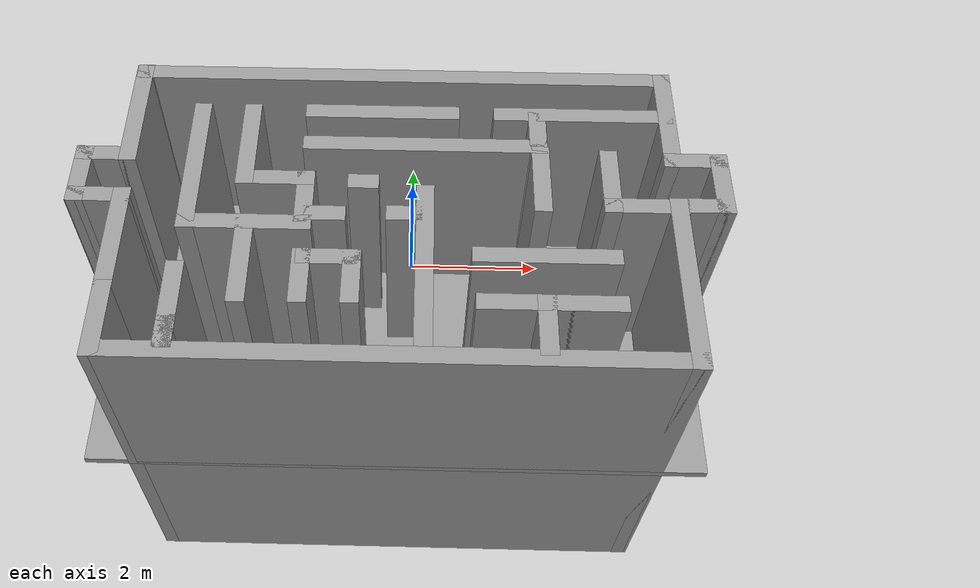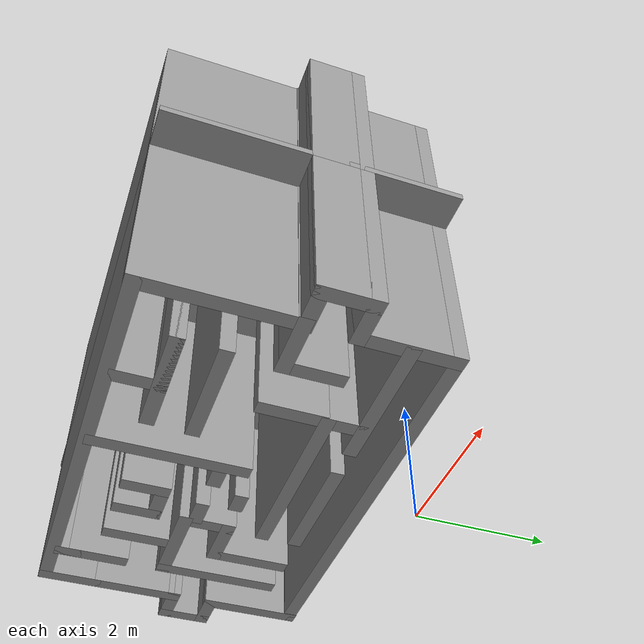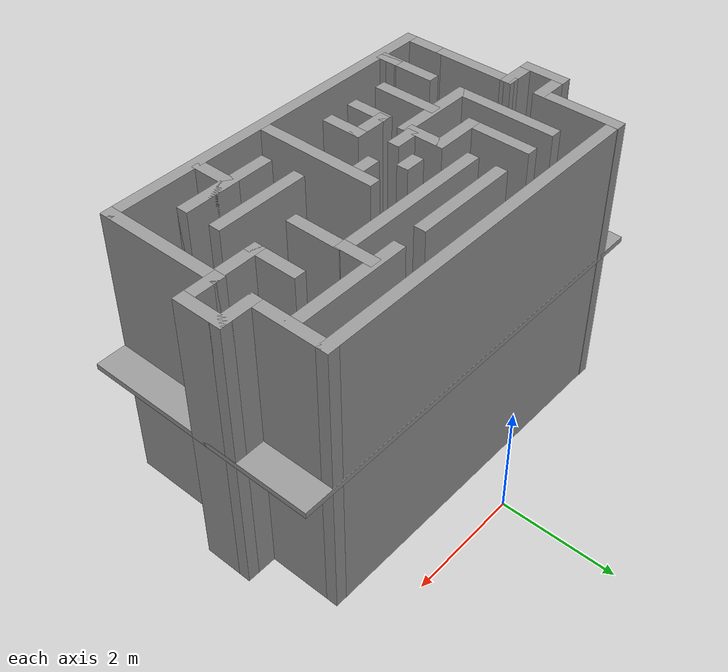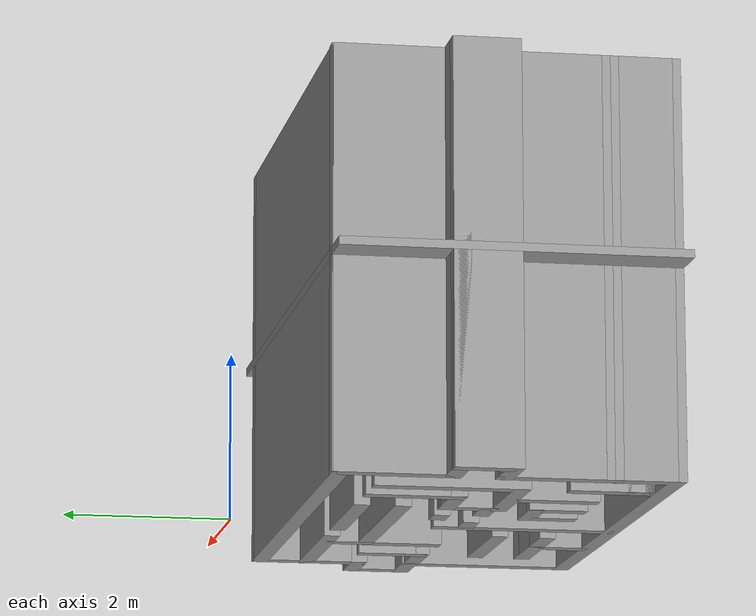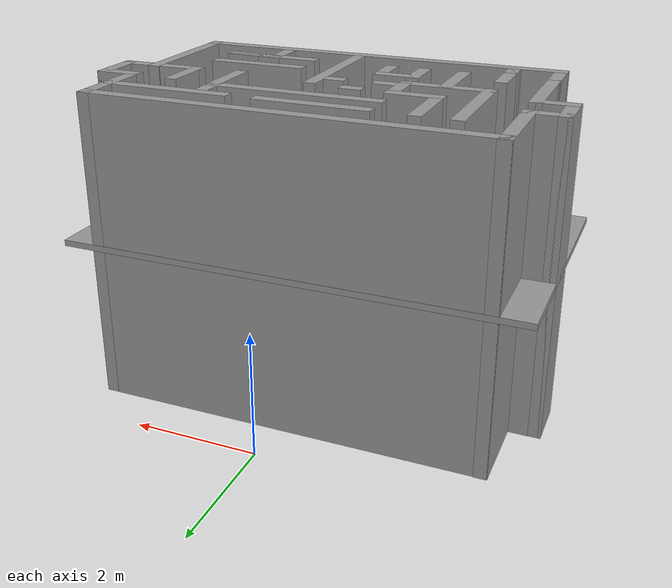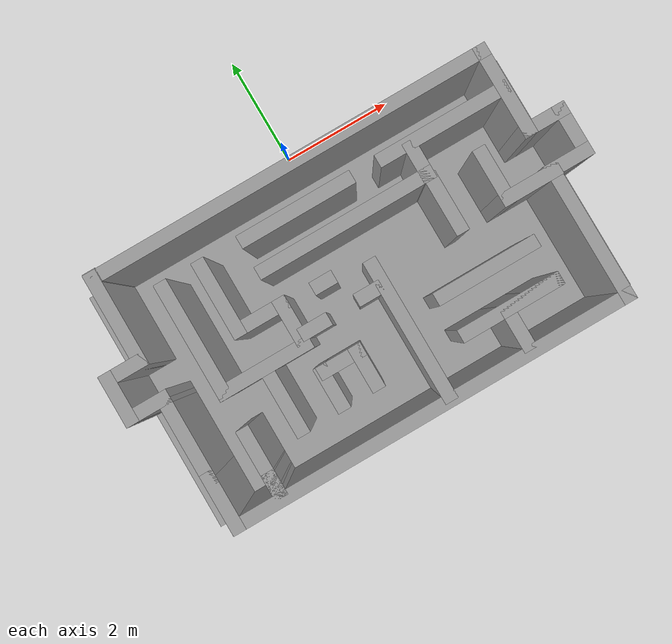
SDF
<?xml version='1.0'?>
<sdf version='1.4'>
  <model name='Maze'>
    <link name='Floor_0'>
      <collision name='Floor_0_Collision'>
        <geometry>
          <box>
            <size>7.4 4.1 0.1</size>
          </box>
        </geometry>
        <pose>0 0 0.05 0 -0 0</pose>
      </collision>
      <visual name='Floor_0_Visual'>
        <pose>0 0 0.05 0 -0 0</pose>
        <geometry>
          <box>
            <size>7.4 4.1 0.1</size>
          </box>
        </geometry>
        <material>
          <script>
            <uri>file://media/materials/scripts/gazebo.material</uri>
            <name>Gazebo/Grey</name>
          </script>
        </material>
      </visual>
      <velocity_decay>
        <linear>0</linear>
        <angular>0</angular>
      </velocity_decay>
      <pose>-0.13 -2.74 2.5 0 -0 0</pose>
    </link>
    <link name='Wall_0'>
      <collision name='Wall_0_Collision'>
        <geometry>
          <box>
            <size>0.8 0.2 2.5</size>
          </box>
        </geometry>
        <pose>0 0 1.25 0 -0 0</pose>
      </collision>
      <visual name='Wall_0_Visual'>
        <pose>0 0 1.25 0 -0 0</pose>
        <geometry>
          <box>
            <size>0.8 0.2 2.5</size>
          </box>
        </geometry>
        <material>
          <script>
            <uri>file://media/materials/scripts/gazebo.material</uri>
            <name>Gazebo/Grey</name>
          </script>
        </material>
      </visual>
      <velocity_decay>
        <linear>0</linear>
        <angular>0</angular>
      </velocity_decay>
      <pose>-3.73 -2.4 0 0 -0 1.5708</pose>
    </link>
    <link name='Wall_1'>
      <collision name='Wall_1_Collision'>
        <geometry>
          <box>
            <size>0.7 0.2 2.5</size>
          </box>
        </geometry>
        <pose>0 0 1.25 0 -0 0</pose>
      </collision>
      <visual name='Wall_1_Visual'>
        <pose>0 0 1.25 0 -0 0</pose>
        <geometry>
          <box>
            <size>0.7 0.2 2.5</size>
          </box>
        </geometry>
        <material>
          <script>
            <uri>file://media/materials/scripts/gazebo.material</uri>
            <name>Gazebo/Grey</name>
          </script>
        </material>
      </visual>
      <velocity_decay>
        <linear>0</linear>
        <angular>0</angular>
      </velocity_decay>
      <pose>-3.48 -2.1 0 0 -0 0</pose>
    </link>
    <link name='Wall_10'>
      <collision name='Wall_10_Collision'>
        <geometry>
          <box>
            <size>0.85 0.2 2.5</size>
          </box>
        </geometry>
        <pose>0 0 1.25 0 -0 0</pose>
      </collision>
      <visual name='Wall_10_Visual'>
        <pose>0 0 1.25 0 -0 0</pose>
        <geometry>
          <box>
            <size>0.85 0.2 2.5</size>
          </box>
        </geometry>
        <material>
          <script>
            <uri>file://media/materials/scripts/gazebo.material</uri>
            <name>Gazebo/Grey</name>
          </script>
        </material>
      </visual>
      <velocity_decay>
        <linear>0</linear>
        <angular>0</angular>
      </velocity_decay>
      <pose>3.47 -2.375 0 0 -0 1.5708</pose>
    </link>
    <link name='Wall_100'>
      <collision name='Wall_100_Collision'>
        <geometry>
          <box>
            <size>0.96 0.2 2.5</size>
          </box>
        </geometry>
        <pose>0 0 1.25 0 -0 0</pose>
      </collision>
      <visual name='Wall_100_Visual'>
        <pose>0 0 1.25 0 -0 0</pose>
        <geometry>
          <box>
            <size>0.96 0.2 2.5</size>
          </box>
        </geometry>
        <material>
          <script>
            <uri>file://media/materials/scripts/gazebo.material</uri>
            <name>Gazebo/Grey</name>
          </script>
        </material>
      </visual>
      <velocity_decay>
        <linear>0</linear>
        <angular>0</angular>
      </velocity_decay>
      <pose>1.81785 -4.02357 2.5 0 -0 3.14159</pose>
    </link>
    <link name='Wall_101'>
      <collision name='Wall_101_Collision'>
        <geometry>
          <box>
            <size>0.74 0.2 2.5</size>
          </box>
        </geometry>
        <pose>0 0 1.25 0 -0 0</pose>
      </collision>
      <visual name='Wall_101_Visual'>
        <pose>0 0 1.25 0 -0 0</pose>
        <geometry>
          <box>
            <size>0.74 0.2 2.5</size>
          </box>
        </geometry>
        <material>
          <script>
            <uri>file://media/materials/scripts/gazebo.material</uri>
            <name>Gazebo/Grey</name>
          </script>
        </material>
      </visual>
      <velocity_decay>
        <linear>0</linear>
        <angular>0</angular>
      </velocity_decay>
      <pose>1.43785 -4.29357 2.5 0 0 -1.5708</pose>
    </link>
    <link name='Wall_102'>
      <collision name='Wall_102_Collision'>
        <geometry>
          <box>
            <size>0.35 0.2 2.5</size>
          </box>
        </geometry>
        <pose>0 0 1.25 0 -0 0</pose>
      </collision>
      <visual name='Wall_102_Visual'>
        <pose>0 0 1.25 0 -0 0</pose>
        <geometry>
          <box>
            <size>0.35 0.2 2.5</size>
          </box>
        </geometry>
        <material>
          <script>
            <uri>file://media/materials/scripts/gazebo.material</uri>
            <name>Gazebo/Grey</name>
          </script>
        </material>
      </visual>
      <velocity_decay>
        <linear>0</linear>
        <angular>0</angular>
      </velocity_decay>
      <pose>-0.53715 -2.44357 2.5 0 -0 0</pose>
    </link>
    <link name='Wall_103'>
      <collision name='Wall_103_Collision'>
        <geometry>
          <box>
            <size>0.4 0.2 2.5</size>
          </box>
        </geometry>
        <pose>0 0 1.25 0 -0 0</pose>
      </collision>
      <visual name='Wall_103_Visual'>
        <pose>0 0 1.25 0 -0 0</pose>
        <geometry>
          <box>
            <size>0.4 0.2 2.5</size>
          </box>
        </geometry>
        <material>
          <script>
            <uri>file://media/materials/scripts/gazebo.material</uri>
            <name>Gazebo/Grey</name>
          </script>
        </material>
      </visual>
      <velocity_decay>
        <linear>0</linear>
        <angular>0</angular>
      </velocity_decay>
      <pose>-0.07215 -2.88357 2.5 0 -0 3.14159</pose>
    </link>
    <link name='Wall_104'>
      <collision name='Wall_104_Collision'>
        <geometry>
          <box>
            <size>0.46 0.2 2.5</size>
          </box>
        </geometry>
        <pose>0 0 1.25 0 -0 0</pose>
      </collision>
      <visual name='Wall_104_Visual'>
        <pose>0 0 1.25 0 -0 0</pose>
        <geometry>
          <box>
            <size>0.46 0.2 2.5</size>
          </box>
        </geometry>
        <material>
          <script>
            <uri>file://media/materials/scripts/gazebo.material</uri>
            <name>Gazebo/Grey</name>
          </script>
        </material>
      </visual>
      <velocity_decay>
        <linear>0</linear>
        <angular>0</angular>
      </velocity_decay>
      <pose>-0.94215 -2.90357 2.5 0 -0 0</pose>
    </link>
    <link name='Wall_11'>
      <collision name='Wall_11_Collision'>
        <geometry>
          <box>
            <size>0.72 0.2 2.5</size>
          </box>
        </geometry>
        <pose>0 0 1.25 0 -0 0</pose>
      </collision>
      <visual name='Wall_11_Visual'>
        <pose>0 0 1.25 0 -0 0</pose>
        <geometry>
          <box>
            <size>0.72 0.2 2.5</size>
          </box>
        </geometry>
        <material>
          <script>
            <uri>file://media/materials/scripts/gazebo.material</uri>
            <name>Gazebo/Grey</name>
          </script>
        </material>
      </visual>
      <velocity_decay>
        <linear>0</linear>
        <angular>0</angular>
      </velocity_decay>
      <pose>3.21 -2.05 0 0 -0 3.14159</pose>
    </link>
    <link name='Wall_12'>
      <collision name='Wall_12_Collision'>
        <geometry>
          <box>
            <size>1.45 0.2 2.5</size>
          </box>
        </geometry>
        <pose>0 0 1.25 0 -0 0</pose>
      </collision>
      <visual name='Wall_12_Visual'>
        <pose>0 0 1.25 0 -0 0</pose>
        <geometry>
          <box>
            <size>1.45 0.2 2.5</size>
          </box>
        </geometry>
        <material>
          <script>
            <uri>file://media/materials/scripts/gazebo.material</uri>
            <name>Gazebo/Grey</name>
          </script>
        </material>
      </visual>
      <velocity_decay>
        <linear>0</linear>
        <angular>0</angular>
      </velocity_decay>
      <pose>2.95 -1.425 0 0 -0 1.5708</pose>
    </link>
    <link name='Wall_13'>
      <collision name='Wall_13_Collision'>
        <geometry>
          <box>
            <size>6.37 0.2 2.5</size>
          </box>
        </geometry>
        <pose>0 0 1.25 0 -0 0</pose>
      </collision>
      <visual name='Wall_13_Visual'>
        <pose>0 0 1.25 0 -0 0</pose>
        <geometry>
          <box>
            <size>6.37 0.2 2.5</size>
          </box>
        </geometry>
        <material>
          <script>
            <uri>file://media/materials/scripts/gazebo.material</uri>
            <name>Gazebo/Grey</name>
          </script>
        </material>
      </visual>
      <velocity_decay>
        <linear>0</linear>
        <angular>0</angular>
      </velocity_decay>
      <pose>-0.135 -0.8 0 0 -0 3.14159</pose>
    </link>
    <link name='Wall_14'>
      <collision name='Wall_14_Collision'>
        <geometry>
          <box>
            <size>0.21 0.2 2.5</size>
          </box>
        </geometry>
        <pose>0 0 1.25 0 -0 0</pose>
      </collision>
      <visual name='Wall_14_Visual'>
        <pose>0 0 1.25 0 -0 0</pose>
        <geometry>
          <box>
            <size>0.21 0.2 2.5</size>
          </box>
        </geometry>
        <material>
          <script>
            <uri>file://media/materials/scripts/gazebo.material</uri>
            <name>Gazebo/Grey</name>
          </script>
        </material>
      </visual>
      <velocity_decay>
        <linear>0</linear>
        <angular>0</angular>
      </velocity_decay>
      <pose>-3.22 -0.795 0 0 -0 1.5708</pose>
    </link>
    <link name='Wall_16'>
      <collision name='Wall_16_Collision'>
        <geometry>
          <box>
            <size>1.83515 0.2 2.5</size>
          </box>
        </geometry>
        <pose>0 0 1.25 0 -0 0</pose>
      </collision>
      <visual name='Wall_16_Visual'>
        <pose>0 0 1.25 0 -0 0</pose>
        <geometry>
          <box>
            <size>1.83515 0.2 2.5</size>
          </box>
        </geometry>
        <material>
          <script>
            <uri>file://media/materials/scripts/gazebo.material</uri>
            <name>Gazebo/Grey</name>
          </script>
        </material>
      </visual>
      <velocity_decay>
        <linear>0</linear>
        <angular>0</angular>
      </velocity_decay>
      <pose>-2.46 -2.22243 0 0 0 -1.5708</pose>
    </link>
    <link name='Wall_17'>
      <collision name='Wall_17_Collision'>
        <geometry>
          <box>
            <size>1.48 0.2 2.5</size>
          </box>
        </geometry>
        <pose>0 0 1.25 0 -0 0</pose>
      </collision>
      <visual name='Wall_17_Visual'>
        <pose>0 0 1.25 0 -0 0</pose>
        <geometry>
          <box>
            <size>1.48 0.2 2.5</size>
          </box>
        </geometry>
        <material>
          <script>
            <uri>file://media/materials/scripts/gazebo.material</uri>
            <name>Gazebo/Grey</name>
          </script>
        </material>
      </visual>
      <velocity_decay>
        <linear>0</linear>
        <angular>0</angular>
      </velocity_decay>
      <pose>-1.82 -3.04 0 0 -0 0</pose>
    </link>
    <link name='Wall_19'>
      <collision name='Wall_19_Collision'>
        <geometry>
          <box>
            <size>1.20515 0.2 2.5</size>
          </box>
        </geometry>
        <pose>0 0 1.25 0 -0 0</pose>
      </collision>
      <visual name='Wall_19_Visual'>
        <pose>0 0 1.25 0 -0 0</pose>
        <geometry>
          <box>
            <size>1.20515 0.2 2.5</size>
          </box>
        </geometry>
        <material>
          <script>
            <uri>file://media/materials/scripts/gazebo.material</uri>
            <name>Gazebo/Grey</name>
          </script>
        </material>
      </visual>
      <velocity_decay>
        <linear>0</linear>
        <angular>0</angular>
      </velocity_decay>
      <pose>-1.87157 -1.90742 0 0 0 -1.5708</pose>
    </link>
    <link name='Wall_2'>
      <collision name='Wall_2_Collision'>
        <geometry>
          <box>
            <size>1.5 0.2 2.5</size>
          </box>
        </geometry>
        <pose>0 0 1.25 0 -0 0</pose>
      </collision>
      <visual name='Wall_2_Visual'>
        <pose>0 0 1.25 0 -0 0</pose>
        <geometry>
          <box>
            <size>1.5 0.2 2.5</size>
          </box>
        </geometry>
        <material>
          <script>
            <uri>file://media/materials/scripts/gazebo.material</uri>
            <name>Gazebo/Grey</name>
          </script>
        </material>
      </visual>
      <velocity_decay>
        <linear>0</linear>
        <angular>0</angular>
      </velocity_decay>
      <pose>-3.23 -1.45 0 0 -0 1.5708</pose>
    </link>
    <link name='Wall_20'>
      <collision name='Wall_20_Collision'>
        <geometry>
          <box>
            <size>0.891574 0.2 2.5</size>
          </box>
        </geometry>
        <pose>0 0 1.25 0 -0 0</pose>
      </collision>
      <visual name='Wall_20_Visual'>
        <pose>0 0 1.25 0 -0 0</pose>
        <geometry>
          <box>
            <size>0.891574 0.2 2.5</size>
          </box>
        </geometry>
        <material>
          <script>
            <uri>file://media/materials/scripts/gazebo.material</uri>
            <name>Gazebo/Grey</name>
          </script>
        </material>
      </visual>
      <velocity_decay>
        <linear>0</linear>
        <angular>0</angular>
      </velocity_decay>
      <pose>-1.52579 -2.41 0 0 -0 0</pose>
    </link>
    <link name='Wall_21'>
      <collision name='Wall_21_Collision'>
        <geometry>
          <box>
            <size>0.72 0.2 2.5</size>
          </box>
        </geometry>
        <pose>0 0 1.25 0 -0 0</pose>
      </collision>
      <visual name='Wall_21_Visual'>
        <pose>0 0 1.25 0 -0 0</pose>
        <geometry>
          <box>
            <size>0.72 0.2 2.5</size>
          </box>
        </geometry>
        <material>
          <script>
            <uri>file://media/materials/scripts/gazebo.material</uri>
            <name>Gazebo/Grey</name>
          </script>
        </material>
      </visual>
      <velocity_decay>
        <linear>0</linear>
        <angular>0</angular>
      </velocity_decay>
      <pose>-1.18 -2.67 0 0 0 -1.5708</pose>
    </link>
    <link name='Wall_24'>
      <collision name='Wall_24_Collision'>
        <geometry>
          <box>
            <size>0.397255 0.2 2.5</size>
          </box>
        </geometry>
        <pose>0 0 1.25 0 -0 0</pose>
      </collision>
      <visual name='Wall_24_Visual'>
        <pose>0 0 1.25 0 -0 0</pose>
        <geometry>
          <box>
            <size>0.397255 0.2 2.5</size>
          </box>
        </geometry>
        <material>
          <script>
            <uri>file://media/materials/scripts/gazebo.material</uri>
            <name>Gazebo/Grey</name>
          </script>
        </material>
      </visual>
      <velocity_decay>
        <linear>0</linear>
        <angular>0</angular>
      </velocity_decay>
      <pose>-2.48879 -4.4693 0 0 0 -1.5708</pose>
    </link>
    <link name='Wall_25'>
      <collision name='Wall_25_Collision'>
        <geometry>
          <box>
            <size>0.397255 0.2 2.5</size>
          </box>
        </geometry>
        <pose>0 0 1.25 0 -0 0</pose>
      </collision>
      <visual name='Wall_25_Visual'>
        <pose>0 0 1.25 0 -0 0</pose>
        <geometry>
          <box>
            <size>0.397255 0.2 2.5</size>
          </box>
        </geometry>
        <material>
          <script>
            <uri>file://media/materials/scripts/gazebo.material</uri>
            <name>Gazebo/Grey</name>
          </script>
        </material>
      </visual>
      <velocity_decay>
        <linear>0</linear>
        <angular>0</angular>
      </velocity_decay>
      <pose>-2.48879 -4.4693 0 0 -0 1.5708</pose>
    </link>
    <link name='Wall_26'>
      <collision name='Wall_26_Collision'>
        <geometry>
          <box>
            <size>0.883817 0.2 2.5</size>
          </box>
        </geometry>
        <pose>0 0 1.25 0 -0 0</pose>
      </collision>
      <visual name='Wall_26_Visual'>
        <pose>0 0 1.25 0 -0 0</pose>
        <geometry>
          <box>
            <size>0.883817 0.2 2.5</size>
          </box>
        </geometry>
        <material>
          <script>
            <uri>file://media/materials/scripts/gazebo.material</uri>
            <name>Gazebo/Grey</name>
          </script>
        </material>
      </visual>
      <velocity_decay>
        <linear>0</linear>
        <angular>0</angular>
      </velocity_decay>
      <pose>-2.48879 -4.02876 0 0 -0 1.5708</pose>
    </link>
    <link name='Wall_28'>
      <collision name='Wall_28_Collision'>
        <geometry>
          <box>
            <size>1.1008 0.2 2.5</size>
          </box>
        </geometry>
        <pose>0 0 1.25 0 -0 0</pose>
      </collision>
      <visual name='Wall_28_Visual'>
        <pose>0 0 1.25 0 -0 0</pose>
        <geometry>
          <box>
            <size>1.1008 0.2 2.5</size>
          </box>
        </geometry>
        <material>
          <script>
            <uri>file://media/materials/scripts/gazebo.material</uri>
            <name>Gazebo/Grey</name>
          </script>
        </material>
      </visual>
      <velocity_decay>
        <linear>0</linear>
        <angular>0</angular>
      </velocity_decay>
      <pose>-1.80497 -3.54549 0 0 0 -1.5708</pose>
    </link>
    <link name='Wall_31'>
      <collision name='Wall_31_Collision'>
        <geometry>
          <box>
            <size>0.699712 0.2 2.5</size>
          </box>
        </geometry>
        <pose>0 0 1.25 0 -0 0</pose>
      </collision>
      <visual name='Wall_31_Visual'>
        <pose>0 0 1.25 0 -0 0</pose>
        <geometry>
          <box>
            <size>0.699712 0.2 2.5</size>
          </box>
        </geometry>
        <material>
          <script>
            <uri>file://media/materials/scripts/gazebo.material</uri>
            <name>Gazebo/Grey</name>
          </script>
        </material>
      </visual>
      <velocity_decay>
        <linear>0</linear>
        <angular>0</angular>
      </velocity_decay>
      <pose>-1.16061 -3.73945 0 0 0 -1.5708</pose>
    </link>
    <link name='Wall_33'>
      <collision name='Wall_33_Collision'>
        <geometry>
          <box>
            <size>0.706287 0.2 2.5</size>
          </box>
        </geometry>
        <pose>0 0 1.25 0 -0 0</pose>
      </collision>
      <visual name='Wall_33_Visual'>
        <pose>0 0 1.25 0 -0 0</pose>
        <geometry>
          <box>
            <size>0.706287 0.2 2.5</size>
          </box>
        </geometry>
        <material>
          <script>
            <uri>file://media/materials/scripts/gazebo.material</uri>
            <name>Gazebo/Grey</name>
          </script>
        </material>
      </visual>
      <velocity_decay>
        <linear>0</linear>
        <angular>0</angular>
      </velocity_decay>
      <pose>-0.868014 -3.4896 0 0 -0 0</pose>
    </link>
    <link name='Wall_34'>
      <collision name='Wall_34_Collision'>
        <geometry>
          <box>
            <size>0.693137 0.2 2.5</size>
          </box>
        </geometry>
        <pose>0 0 1.25 0 -0 0</pose>
      </collision>
      <visual name='Wall_34_Visual'>
        <pose>0 0 1.25 0 -0 0</pose>
        <geometry>
          <box>
            <size>0.693137 0.2 2.5</size>
          </box>
        </geometry>
        <material>
          <script>
            <uri>file://media/materials/scripts/gazebo.material</uri>
            <name>Gazebo/Grey</name>
          </script>
        </material>
      </visual>
      <velocity_decay>
        <linear>0</linear>
        <angular>0</angular>
      </velocity_decay>
      <pose>-0.61487 -3.73617 0 0 0 -1.5708</pose>
    </link>
    <link name='Wall_36'>
      <collision name='Wall_36_Collision'>
        <geometry>
          <box>
            <size>1.79546 0.2 2.5</size>
          </box>
        </geometry>
        <pose>0 0 1.25 0 -0 0</pose>
      </collision>
      <visual name='Wall_36_Visual'>
        <pose>0 0 1.25 0 -0 0</pose>
        <geometry>
          <box>
            <size>1.79546 0.2 2.5</size>
          </box>
        </geometry>
        <material>
          <script>
            <uri>file://media/materials/scripts/gazebo.material</uri>
            <name>Gazebo/Grey</name>
          </script>
        </material>
      </visual>
      <velocity_decay>
        <linear>0</linear>
        <angular>0</angular>
      </velocity_decay>
      <pose>-0.354291 -1.38805 0 0 -0 0</pose>
    </link>
    <link name='Wall_38'>
      <collision name='Wall_38_Collision'>
        <geometry>
          <box>
            <size>2.07524 0.2 2.5</size>
          </box>
        </geometry>
        <pose>0 0 1.25 0 -0 0</pose>
      </collision>
      <visual name='Wall_38_Visual'>
        <pose>0 0 1.25 0 -0 0</pose>
        <geometry>
          <box>
            <size>2.07524 0.2 2.5</size>
          </box>
        </geometry>
        <material>
          <script>
            <uri>file://media/materials/scripts/gazebo.material</uri>
            <name>Gazebo/Grey</name>
          </script>
        </material>
      </visual>
      <velocity_decay>
        <linear>0</linear>
        <angular>0</angular>
      </velocity_decay>
      <pose>1.97841 -1.38805 0 0 -0 0</pose>
    </link>
    <link name='Wall_4'>
      <collision name='Wall_4_Collision'>
        <geometry>
          <box>
            <size>0.709041 0.2 2.5</size>
          </box>
        </geometry>
        <pose>0 0 1.25 0 -0 0</pose>
      </collision>
      <visual name='Wall_4_Visual'>
        <pose>0 0 1.25 0 -0 0</pose>
        <geometry>
          <box>
            <size>0.709041 0.2 2.5</size>
          </box>
        </geometry>
        <material>
          <script>
            <uri>file://media/materials/scripts/gazebo.material</uri>
            <name>Gazebo/Grey</name>
          </script>
        </material>
      </visual>
      <velocity_decay>
        <linear>0</linear>
        <angular>0</angular>
      </velocity_decay>
      <pose>-3.46548 -2.69995 0 0 -0 0.000201</pose>
    </link>
    <link name='Wall_41'>
      <collision name='Wall_41_Collision'>
        <geometry>
          <box>
            <size>0.933459 0.2 2.5</size>
          </box>
        </geometry>
        <pose>0 0 1.25 0 -0 0</pose>
      </collision>
      <visual name='Wall_41_Visual'>
        <pose>0 0 1.25 0 -0 0</pose>
        <geometry>
          <box>
            <size>0.933459 0.2 2.5</size>
          </box>
        </geometry>
        <material>
          <script>
            <uri>file://media/materials/scripts/gazebo.material</uri>
            <name>Gazebo/Grey</name>
          </script>
        </material>
      </visual>
      <velocity_decay>
        <linear>0</linear>
        <angular>0</angular>
      </velocity_decay>
      <pose>2.59467 -2.71886 0 0 -0 3.14159</pose>
    </link>
    <link name='Wall_42'>
      <collision name='Wall_42_Collision'>
        <geometry>
          <box>
            <size>0.895652 0.2 2.5</size>
          </box>
        </geometry>
        <pose>0 0 1.25 0 -0 0</pose>
      </collision>
      <visual name='Wall_42_Visual'>
        <pose>0 0 1.25 0 -0 0</pose>
        <geometry>
          <box>
            <size>0.895652 0.2 2.5</size>
          </box>
        </geometry>
        <material>
          <script>
            <uri>file://media/materials/scripts/gazebo.material</uri>
            <name>Gazebo/Grey</name>
          </script>
        </material>
      </visual>
      <velocity_decay>
        <linear>0</linear>
        <angular>0</angular>
      </velocity_decay>
      <pose>2.22794 -2.37104 0 0 -0 1.5708</pose>
    </link>
    <link name='Wall_44'>
      <collision name='Wall_44_Collision'>
        <geometry>
          <box>
            <size>2.7913 0.2 2.5</size>
          </box>
        </geometry>
        <pose>0 0 1.25 0 -0 0</pose>
      </collision>
      <visual name='Wall_44_Visual'>
        <pose>0 0 1.25 0 -0 0</pose>
        <geometry>
          <box>
            <size>2.7913 0.2 2.5</size>
          </box>
        </geometry>
        <material>
          <script>
            <uri>file://media/materials/scripts/gazebo.material</uri>
            <name>Gazebo/Grey</name>
          </script>
        </material>
      </visual>
      <velocity_decay>
        <linear>0</linear>
        <angular>0</angular>
      </velocity_decay>
      <pose>0.145087 -1.8818 0 0 -0 0</pose>
    </link>
    <link name='Wall_45'>
      <collision name='Wall_45_Collision'>
        <geometry>
          <box>
            <size>0.626087 0.2 2.5</size>
          </box>
        </geometry>
        <pose>0 0 1.25 0 -0 0</pose>
      </collision>
      <visual name='Wall_45_Visual'>
        <pose>0 0 1.25 0 -0 0</pose>
        <geometry>
          <box>
            <size>0.626087 0.2 2.5</size>
          </box>
        </geometry>
        <material>
          <script>
            <uri>file://media/materials/scripts/gazebo.material</uri>
            <name>Gazebo/Grey</name>
          </script>
        </material>
      </visual>
      <velocity_decay>
        <linear>0</linear>
        <angular>0</angular>
      </velocity_decay>
      <pose>1.44074 -1.66876 0 0 -0 1.5708</pose>
    </link>
    <link name='Wall_47'>
      <collision name='Wall_47_Collision'>
        <geometry>
          <box>
            <size>2.23 0.2 2.5</size>
          </box>
        </geometry>
        <pose>0 0 1.25 0 -0 0</pose>
      </collision>
      <visual name='Wall_47_Visual'>
        <pose>0 0 1.25 0 -0 0</pose>
        <geometry>
          <box>
            <size>2.23 0.2 2.5</size>
          </box>
        </geometry>
        <material>
          <script>
            <uri>file://media/materials/scripts/gazebo.material</uri>
            <name>Gazebo/Grey</name>
          </script>
        </material>
      </visual>
      <velocity_decay>
        <linear>0</linear>
        <angular>0</angular>
      </velocity_decay>
      <pose>0.15785 -3.59857 0 0 -0 1.5708</pose>
    </link>
    <link name='Wall_49'>
      <collision name='Wall_49_Collision'>
        <geometry>
          <box>
            <size>0.940608 0.2 2.5</size>
          </box>
        </geometry>
        <pose>0 0 1.25 0 -0 0</pose>
      </collision>
      <visual name='Wall_49_Visual'>
        <pose>0 0 1.25 0 -0 0</pose>
        <geometry>
          <box>
            <size>0.940608 0.2 2.5</size>
          </box>
        </geometry>
        <material>
          <script>
            <uri>file://media/materials/scripts/gazebo.material</uri>
            <name>Gazebo/Grey</name>
          </script>
        </material>
      </visual>
      <velocity_decay>
        <linear>0</linear>
        <angular>0</angular>
      </velocity_decay>
      <pose>1.45785 -2.35357 0 0 0 -1.5708</pose>
    </link>
    <link name='Wall_5'>
      <collision name='Wall_5_Collision'>
        <geometry>
          <box>
            <size>1.45222 0.2 2.5</size>
          </box>
        </geometry>
        <pose>0 0 1.25 0 -0 0</pose>
      </collision>
      <visual name='Wall_5_Visual'>
        <pose>0 0 1.25 0 -0 0</pose>
        <geometry>
          <box>
            <size>1.45222 0.2 2.5</size>
          </box>
        </geometry>
        <material>
          <script>
            <uri>file://media/materials/scripts/gazebo.material</uri>
            <name>Gazebo/Grey</name>
          </script>
        </material>
      </visual>
      <velocity_decay>
        <linear>0</linear>
        <angular>0</angular>
      </velocity_decay>
      <pose>-3.21096 -3.32596 0 0 0 -1.5708</pose>
    </link>
    <link name='Wall_51'>
      <collision name='Wall_51_Collision'>
        <geometry>
          <box>
            <size>1.61 0.2 2.5</size>
          </box>
        </geometry>
        <pose>0 0 1.25 0 -0 0</pose>
      </collision>
      <visual name='Wall_51_Visual'>
        <pose>0 0 1.25 0 -0 0</pose>
        <geometry>
          <box>
            <size>1.61 0.2 2.5</size>
          </box>
        </geometry>
        <material>
          <script>
            <uri>file://media/materials/scripts/gazebo.material</uri>
            <name>Gazebo/Grey</name>
          </script>
        </material>
      </visual>
      <velocity_decay>
        <linear>0</linear>
        <angular>0</angular>
      </velocity_decay>
      <pose>1.47285 -3.42357 0 0 -0 0</pose>
    </link>
    <link name='Wall_54'>
      <collision name='Wall_54_Collision'>
        <geometry>
          <box>
            <size>1.6 0.2 2.5</size>
          </box>
        </geometry>
        <pose>0 0 1.25 0 -0 0</pose>
      </collision>
      <visual name='Wall_54_Visual'>
        <pose>0 0 1.25 0 -0 0</pose>
        <geometry>
          <box>
            <size>1.6 0.2 2.5</size>
          </box>
        </geometry>
        <material>
          <script>
            <uri>file://media/materials/scripts/gazebo.material</uri>
            <name>Gazebo/Grey</name>
          </script>
        </material>
      </visual>
      <velocity_decay>
        <linear>0</linear>
        <angular>0</angular>
      </velocity_decay>
      <pose>1.49785 -4.02357 0 0 -0 0</pose>
    </link>
    <link name='Wall_55'>
      <collision name='Wall_55_Collision'>
        <geometry>
          <box>
            <size>0.96 0.2 2.5</size>
          </box>
        </geometry>
        <pose>0 0 1.25 0 -0 0</pose>
      </collision>
      <visual name='Wall_55_Visual'>
        <pose>0 0 1.25 0 -0 0</pose>
        <geometry>
          <box>
            <size>0.96 0.2 2.5</size>
          </box>
        </geometry>
        <material>
          <script>
            <uri>file://media/materials/scripts/gazebo.material</uri>
            <name>Gazebo/Grey</name>
          </script>
        </material>
      </visual>
      <velocity_decay>
        <linear>0</linear>
        <angular>0</angular>
      </velocity_decay>
      <pose>1.81785 -4.02357 0 0 -0 3.14159</pose>
    </link>
    <link name='Wall_56'>
      <collision name='Wall_56_Collision'>
        <geometry>
          <box>
            <size>0.74 0.2 2.5</size>
          </box>
        </geometry>
        <pose>0 0 1.25 0 -0 0</pose>
      </collision>
      <visual name='Wall_56_Visual'>
        <pose>0 0 1.25 0 -0 0</pose>
        <geometry>
          <box>
            <size>0.74 0.2 2.5</size>
          </box>
        </geometry>
        <material>
          <script>
            <uri>file://media/materials/scripts/gazebo.material</uri>
            <name>Gazebo/Grey</name>
          </script>
        </material>
      </visual>
      <velocity_decay>
        <linear>0</linear>
        <angular>0</angular>
      </velocity_decay>
      <pose>1.43785 -4.29357 0 0 0 -1.5708</pose>
    </link>
    <link name='Wall_58'>
      <collision name='Wall_58_Collision'>
        <geometry>
          <box>
            <size>0.35 0.2 2.5</size>
          </box>
        </geometry>
        <pose>0 0 1.25 0 -0 0</pose>
      </collision>
      <visual name='Wall_58_Visual'>
        <pose>0 0 1.25 0 -0 0</pose>
        <geometry>
          <box>
            <size>0.35 0.2 2.5</size>
          </box>
        </geometry>
        <material>
          <script>
            <uri>file://media/materials/scripts/gazebo.material</uri>
            <name>Gazebo/Grey</name>
          </script>
        </material>
      </visual>
      <velocity_decay>
        <linear>0</linear>
        <angular>0</angular>
      </velocity_decay>
      <pose>-0.53715 -2.44357 0 0 -0 0</pose>
    </link>
    <link name='Wall_6'>
      <collision name='Wall_6_Collision'>
        <geometry>
          <box>
            <size>0.938167 0.2 2.5</size>
          </box>
        </geometry>
        <pose>0 0 1.25 0 -0 0</pose>
      </collision>
      <visual name='Wall_6_Visual'>
        <pose>0 0 1.25 0 -0 0</pose>
        <geometry>
          <box>
            <size>0.938167 0.2 2.5</size>
          </box>
        </geometry>
        <material>
          <script>
            <uri>file://media/materials/scripts/gazebo.material</uri>
            <name>Gazebo/Grey</name>
          </script>
        </material>
      </visual>
      <velocity_decay>
        <linear>0</linear>
        <angular>0</angular>
      </velocity_decay>
      <pose>-3.21048 -4.32101 0 0 0 -1.56949</pose>
    </link>
    <link name='Wall_60'>
      <collision name='Wall_60_Collision'>
        <geometry>
          <box>
            <size>0.4 0.2 2.5</size>
          </box>
        </geometry>
        <pose>0 0 1.25 0 -0 0</pose>
      </collision>
      <visual name='Wall_60_Visual'>
        <pose>0 0 1.25 0 -0 0</pose>
        <geometry>
          <box>
            <size>0.4 0.2 2.5</size>
          </box>
        </geometry>
        <material>
          <script>
            <uri>file://media/materials/scripts/gazebo.material</uri>
            <name>Gazebo/Grey</name>
          </script>
        </material>
      </visual>
      <velocity_decay>
        <linear>0</linear>
        <angular>0</angular>
      </velocity_decay>
      <pose>-0.07215 -2.88357 0 0 -0 3.14159</pose>
    </link>
    <link name='Wall_62'>
      <collision name='Wall_62_Collision'>
        <geometry>
          <box>
            <size>0.46 0.2 2.5</size>
          </box>
        </geometry>
        <pose>0 0 1.25 0 -0 0</pose>
      </collision>
      <visual name='Wall_62_Visual'>
        <pose>0 0 1.25 0 -0 0</pose>
        <geometry>
          <box>
            <size>0.46 0.2 2.5</size>
          </box>
        </geometry>
        <material>
          <script>
            <uri>file://media/materials/scripts/gazebo.material</uri>
            <name>Gazebo/Grey</name>
          </script>
        </material>
      </visual>
      <velocity_decay>
        <linear>0</linear>
        <angular>0</angular>
      </velocity_decay>
      <pose>-0.94215 -2.90357 0 0 -0 0</pose>
    </link>
    <link name='Wall_64'>
      <collision name='Wall_64_Collision'>
        <geometry>
          <box>
            <size>0.8 0.2 2.5</size>
          </box>
        </geometry>
        <pose>0 0 1.25 0 -0 0</pose>
      </collision>
      <visual name='Wall_64_Visual'>
        <pose>0 0 1.25 0 -0 0</pose>
        <geometry>
          <box>
            <size>0.8 0.2 2.5</size>
          </box>
        </geometry>
        <material>
          <script>
            <uri>file://media/materials/scripts/gazebo.material</uri>
            <name>Gazebo/Grey</name>
          </script>
        </material>
      </visual>
      <velocity_decay>
        <linear>0</linear>
        <angular>0</angular>
      </velocity_decay>
      <pose>-3.73 -2.4 2.5 0 -0 1.5708</pose>
    </link>
    <link name='Wall_65'>
      <collision name='Wall_65_Collision'>
        <geometry>
          <box>
            <size>0.7 0.2 2.5</size>
          </box>
        </geometry>
        <pose>0 0 1.25 0 -0 0</pose>
      </collision>
      <visual name='Wall_65_Visual'>
        <pose>0 0 1.25 0 -0 0</pose>
        <geometry>
          <box>
            <size>0.7 0.2 2.5</size>
          </box>
        </geometry>
        <material>
          <script>
            <uri>file://media/materials/scripts/gazebo.material</uri>
            <name>Gazebo/Grey</name>
          </script>
        </material>
      </visual>
      <velocity_decay>
        <linear>0</linear>
        <angular>0</angular>
      </velocity_decay>
      <pose>-3.48 -2.1 2.5 0 -0 0</pose>
    </link>
    <link name='Wall_66'>
      <collision name='Wall_66_Collision'>
        <geometry>
          <box>
            <size>1.5 0.2 2.5</size>
          </box>
        </geometry>
        <pose>0 0 1.25 0 -0 0</pose>
      </collision>
      <visual name='Wall_66_Visual'>
        <pose>0 0 1.25 0 -0 0</pose>
        <geometry>
          <box>
            <size>1.5 0.2 2.5</size>
          </box>
        </geometry>
        <material>
          <script>
            <uri>file://media/materials/scripts/gazebo.material</uri>
            <name>Gazebo/Grey</name>
          </script>
        </material>
      </visual>
      <velocity_decay>
        <linear>0</linear>
        <angular>0</angular>
      </velocity_decay>
      <pose>-3.23 -1.45 2.5 0 -0 1.5708</pose>
    </link>
    <link name='Wall_67'>
      <collision name='Wall_67_Collision'>
        <geometry>
          <box>
            <size>0.709035 0.2 2.5</size>
          </box>
        </geometry>
        <pose>0 0 1.25 0 -0 0</pose>
      </collision>
      <visual name='Wall_67_Visual'>
        <pose>0 0 1.25 0 -0 0</pose>
        <geometry>
          <box>
            <size>0.709035 0.2 2.5</size>
          </box>
        </geometry>
        <material>
          <script>
            <uri>file://media/materials/scripts/gazebo.material</uri>
            <name>Gazebo/Grey</name>
          </script>
        </material>
      </visual>
      <velocity_decay>
        <linear>0</linear>
        <angular>0</angular>
      </velocity_decay>
      <pose>-3.46548 -2.69995 2.5 0 -0 0.000201</pose>
    </link>
    <link name='Wall_68'>
      <collision name='Wall_68_Collision'>
        <geometry>
          <box>
            <size>1.45212 0.2 2.5</size>
          </box>
        </geometry>
        <pose>0 0 1.25 0 -0 0</pose>
      </collision>
      <visual name='Wall_68_Visual'>
        <pose>0 0 1.25 0 -0 0</pose>
        <geometry>
          <box>
            <size>1.45212 0.2 2.5</size>
          </box>
        </geometry>
        <material>
          <script>
            <uri>file://media/materials/scripts/gazebo.material</uri>
            <name>Gazebo/Grey</name>
          </script>
        </material>
      </visual>
      <velocity_decay>
        <linear>0</linear>
        <angular>0</angular>
      </velocity_decay>
      <pose>-3.21096 -3.32596 2.5 0 0 -1.5708</pose>
    </link>
    <link name='Wall_69'>
      <collision name='Wall_69_Collision'>
        <geometry>
          <box>
            <size>0.937987 0.2 2.5</size>
          </box>
        </geometry>
        <pose>0 0 1.25 0 -0 0</pose>
      </collision>
      <visual name='Wall_69_Visual'>
        <pose>0 0 1.25 0 -0 0</pose>
        <geometry>
          <box>
            <size>0.937987 0.2 2.5</size>
          </box>
        </geometry>
        <material>
          <script>
            <uri>file://media/materials/scripts/gazebo.material</uri>
            <name>Gazebo/Grey</name>
          </script>
        </material>
      </visual>
      <velocity_decay>
        <linear>0</linear>
        <angular>0</angular>
      </velocity_decay>
      <pose>-3.21048 -4.32101 2.5 0 0 -1.56949</pose>
    </link>
    <link name='Wall_7'>
      <collision name='Wall_7_Collision'>
        <geometry>
          <box>
            <size>6.36 0.2 2.5</size>
          </box>
        </geometry>
        <pose>0 0 1.25 0 -0 0</pose>
      </collision>
      <visual name='Wall_7_Visual'>
        <pose>0 0 1.25 0 -0 0</pose>
        <geometry>
          <box>
            <size>6.36 0.2 2.5</size>
          </box>
        </geometry>
        <material>
          <script>
            <uri>file://media/materials/scripts/gazebo.material</uri>
            <name>Gazebo/Grey</name>
          </script>
        </material>
      </visual>
      <velocity_decay>
        <linear>0</linear>
        <angular>0</angular>
      </velocity_decay>
      <pose>-0.13 -4.69 0 0 -0 0</pose>
    </link>
    <link name='Wall_70'>
      <collision name='Wall_70_Collision'>
        <geometry>
          <box>
            <size>6.36 0.2 2.5</size>
          </box>
        </geometry>
        <pose>0 0 1.25 0 -0 0</pose>
      </collision>
      <visual name='Wall_70_Visual'>
        <pose>0 0 1.25 0 -0 0</pose>
        <geometry>
          <box>
            <size>6.36 0.2 2.5</size>
          </box>
        </geometry>
        <material>
          <script>
            <uri>file://media/materials/scripts/gazebo.material</uri>
            <name>Gazebo/Grey</name>
          </script>
        </material>
      </visual>
      <velocity_decay>
        <linear>0</linear>
        <angular>0</angular>
      </velocity_decay>
      <pose>-0.13 -4.69 2.5 0 -0 0</pose>
    </link>
    <link name='Wall_71'>
      <collision name='Wall_71_Collision'>
        <geometry>
          <box>
            <size>2.19 0.2 2.5</size>
          </box>
        </geometry>
        <pose>0 0 1.25 0 -0 0</pose>
      </collision>
      <visual name='Wall_71_Visual'>
        <pose>0 0 1.25 0 -0 0</pose>
        <geometry>
          <box>
            <size>2.19 0.2 2.5</size>
          </box>
        </geometry>
        <material>
          <script>
            <uri>file://media/materials/scripts/gazebo.material</uri>
            <name>Gazebo/Grey</name>
          </script>
        </material>
      </visual>
      <velocity_decay>
        <linear>0</linear>
        <angular>0</angular>
      </velocity_decay>
      <pose>2.95 -3.695 2.5 0 -0 1.5708</pose>
    </link>
    <link name='Wall_72'>
      <collision name='Wall_72_Collision'>
        <geometry>
          <box>
            <size>0.72 0.2 2.5</size>
          </box>
        </geometry>
        <pose>0 0 1.25 0 -0 0</pose>
      </collision>
      <visual name='Wall_72_Visual'>
        <pose>0 0 1.25 0 -0 0</pose>
        <geometry>
          <box>
            <size>0.72 0.2 2.5</size>
          </box>
        </geometry>
        <material>
          <script>
            <uri>file://media/materials/scripts/gazebo.material</uri>
            <name>Gazebo/Grey</name>
          </script>
        </material>
      </visual>
      <velocity_decay>
        <linear>0</linear>
        <angular>0</angular>
      </velocity_decay>
      <pose>3.21 -2.7 2.5 0 -0 0</pose>
    </link>
    <link name='Wall_73'>
      <collision name='Wall_73_Collision'>
        <geometry>
          <box>
            <size>0.85 0.2 2.5</size>
          </box>
        </geometry>
        <pose>0 0 1.25 0 -0 0</pose>
      </collision>
      <visual name='Wall_73_Visual'>
        <pose>0 0 1.25 0 -0 0</pose>
        <geometry>
          <box>
            <size>0.85 0.2 2.5</size>
          </box>
        </geometry>
        <material>
          <script>
            <uri>file://media/materials/scripts/gazebo.material</uri>
            <name>Gazebo/Grey</name>
          </script>
        </material>
      </visual>
      <velocity_decay>
        <linear>0</linear>
        <angular>0</angular>
      </velocity_decay>
      <pose>3.47 -2.375 2.5 0 -0 1.5708</pose>
    </link>
    <link name='Wall_74'>
      <collision name='Wall_74_Collision'>
        <geometry>
          <box>
            <size>0.72 0.2 2.5</size>
          </box>
        </geometry>
        <pose>0 0 1.25 0 -0 0</pose>
      </collision>
      <visual name='Wall_74_Visual'>
        <pose>0 0 1.25 0 -0 0</pose>
        <geometry>
          <box>
            <size>0.72 0.2 2.5</size>
          </box>
        </geometry>
        <material>
          <script>
            <uri>file://media/materials/scripts/gazebo.material</uri>
            <name>Gazebo/Grey</name>
          </script>
        </material>
      </visual>
      <velocity_decay>
        <linear>0</linear>
        <angular>0</angular>
      </velocity_decay>
      <pose>3.21 -2.05 2.5 0 -0 3.14159</pose>
    </link>
    <link name='Wall_75'>
      <collision name='Wall_75_Collision'>
        <geometry>
          <box>
            <size>1.45 0.2 2.5</size>
          </box>
        </geometry>
        <pose>0 0 1.25 0 -0 0</pose>
      </collision>
      <visual name='Wall_75_Visual'>
        <pose>0 0 1.25 0 -0 0</pose>
        <geometry>
          <box>
            <size>1.45 0.2 2.5</size>
          </box>
        </geometry>
        <material>
          <script>
            <uri>file://media/materials/scripts/gazebo.material</uri>
            <name>Gazebo/Grey</name>
          </script>
        </material>
      </visual>
      <velocity_decay>
        <linear>0</linear>
        <angular>0</angular>
      </velocity_decay>
      <pose>2.95 -1.425 2.5 0 -0 1.5708</pose>
    </link>
    <link name='Wall_76'>
      <collision name='Wall_76_Collision'>
        <geometry>
          <box>
            <size>6.37 0.2 2.5</size>
          </box>
        </geometry>
        <pose>0 0 1.25 0 -0 0</pose>
      </collision>
      <visual name='Wall_76_Visual'>
        <pose>0 0 1.25 0 -0 0</pose>
        <geometry>
          <box>
            <size>6.37 0.2 2.5</size>
          </box>
        </geometry>
        <material>
          <script>
            <uri>file://media/materials/scripts/gazebo.material</uri>
            <name>Gazebo/Grey</name>
          </script>
        </material>
      </visual>
      <velocity_decay>
        <linear>0</linear>
        <angular>0</angular>
      </velocity_decay>
      <pose>-0.135 -0.8 2.5 0 -0 3.14159</pose>
    </link>
    <link name='Wall_77'>
      <collision name='Wall_77_Collision'>
        <geometry>
          <box>
            <size>0.21 0.2 2.5</size>
          </box>
        </geometry>
        <pose>0 0 1.25 0 -0 0</pose>
      </collision>
      <visual name='Wall_77_Visual'>
        <pose>0 0 1.25 0 -0 0</pose>
        <geometry>
          <box>
            <size>0.21 0.2 2.5</size>
          </box>
        </geometry>
        <material>
          <script>
            <uri>file://media/materials/scripts/gazebo.material</uri>
            <name>Gazebo/Grey</name>
          </script>
        </material>
      </visual>
      <velocity_decay>
        <linear>0</linear>
        <angular>0</angular>
      </velocity_decay>
      <pose>-3.22 -0.795 2.5 0 -0 1.5708</pose>
    </link>
    <link name='Wall_78'>
      <collision name='Wall_78_Collision'>
        <geometry>
          <box>
            <size>1.83515 0.2 2.5</size>
          </box>
        </geometry>
        <pose>0 0 1.25 0 -0 0</pose>
      </collision>
      <visual name='Wall_78_Visual'>
        <pose>0 0 1.25 0 -0 0</pose>
        <geometry>
          <box>
            <size>1.83515 0.2 2.5</size>
          </box>
        </geometry>
        <material>
          <script>
            <uri>file://media/materials/scripts/gazebo.material</uri>
            <name>Gazebo/Grey</name>
          </script>
        </material>
      </visual>
      <velocity_decay>
        <linear>0</linear>
        <angular>0</angular>
      </velocity_decay>
      <pose>-2.46 -2.22243 2.5 0 0 -1.5708</pose>
    </link>
    <link name='Wall_79'>
      <collision name='Wall_79_Collision'>
        <geometry>
          <box>
            <size>1.48 0.2 2.5</size>
          </box>
        </geometry>
        <pose>0 0 1.25 0 -0 0</pose>
      </collision>
      <visual name='Wall_79_Visual'>
        <pose>0 0 1.25 0 -0 0</pose>
        <geometry>
          <box>
            <size>1.48 0.2 2.5</size>
          </box>
        </geometry>
        <material>
          <script>
            <uri>file://media/materials/scripts/gazebo.material</uri>
            <name>Gazebo/Grey</name>
          </script>
        </material>
      </visual>
      <velocity_decay>
        <linear>0</linear>
        <angular>0</angular>
      </velocity_decay>
      <pose>-1.82 -3.04 2.5 0 -0 0</pose>
    </link>
    <link name='Wall_8'>
      <collision name='Wall_8_Collision'>
        <geometry>
          <box>
            <size>2.19 0.2 2.5</size>
          </box>
        </geometry>
        <pose>0 0 1.25 0 -0 0</pose>
      </collision>
      <visual name='Wall_8_Visual'>
        <pose>0 0 1.25 0 -0 0</pose>
        <geometry>
          <box>
            <size>2.19 0.2 2.5</size>
          </box>
        </geometry>
        <material>
          <script>
            <uri>file://media/materials/scripts/gazebo.material</uri>
            <name>Gazebo/Grey</name>
          </script>
        </material>
      </visual>
      <velocity_decay>
        <linear>0</linear>
        <angular>0</angular>
      </velocity_decay>
      <pose>2.95 -3.695 0 0 -0 1.5708</pose>
    </link>
    <link name='Wall_80'>
      <collision name='Wall_80_Collision'>
        <geometry>
          <box>
            <size>1.20515 0.2 2.5</size>
          </box>
        </geometry>
        <pose>0 0 1.25 0 -0 0</pose>
      </collision>
      <visual name='Wall_80_Visual'>
        <pose>0 0 1.25 0 -0 0</pose>
        <geometry>
          <box>
            <size>1.20515 0.2 2.5</size>
          </box>
        </geometry>
        <material>
          <script>
            <uri>file://media/materials/scripts/gazebo.material</uri>
            <name>Gazebo/Grey</name>
          </script>
        </material>
      </visual>
      <velocity_decay>
        <linear>0</linear>
        <angular>0</angular>
      </velocity_decay>
      <pose>-1.87157 -1.90742 2.5 0 0 -1.5708</pose>
    </link>
    <link name='Wall_81'>
      <collision name='Wall_81_Collision'>
        <geometry>
          <box>
            <size>0.891574 0.2 2.5</size>
          </box>
        </geometry>
        <pose>0 0 1.25 0 -0 0</pose>
      </collision>
      <visual name='Wall_81_Visual'>
        <pose>0 0 1.25 0 -0 0</pose>
        <geometry>
          <box>
            <size>0.891574 0.2 2.5</size>
          </box>
        </geometry>
        <material>
          <script>
            <uri>file://media/materials/scripts/gazebo.material</uri>
            <name>Gazebo/Grey</name>
          </script>
        </material>
      </visual>
      <velocity_decay>
        <linear>0</linear>
        <angular>0</angular>
      </velocity_decay>
      <pose>-1.52579 -2.41 2.5 0 -0 0</pose>
    </link>
    <link name='Wall_82'>
      <collision name='Wall_82_Collision'>
        <geometry>
          <box>
            <size>0.72 0.2 2.5</size>
          </box>
        </geometry>
        <pose>0 0 1.25 0 -0 0</pose>
      </collision>
      <visual name='Wall_82_Visual'>
        <pose>0 0 1.25 0 -0 0</pose>
        <geometry>
          <box>
            <size>0.72 0.2 2.5</size>
          </box>
        </geometry>
        <material>
          <script>
            <uri>file://media/materials/scripts/gazebo.material</uri>
            <name>Gazebo/Grey</name>
          </script>
        </material>
      </visual>
      <velocity_decay>
        <linear>0</linear>
        <angular>0</angular>
      </velocity_decay>
      <pose>-1.18 -2.67 2.5 0 0 -1.5708</pose>
    </link>
    <link name='Wall_83'>
      <collision name='Wall_83_Collision'>
        <geometry>
          <box>
            <size>0.397255 0.2 2.5</size>
          </box>
        </geometry>
        <pose>0 0 1.25 0 -0 0</pose>
      </collision>
      <visual name='Wall_83_Visual'>
        <pose>0 0 1.25 0 -0 0</pose>
        <geometry>
          <box>
            <size>0.397255 0.2 2.5</size>
          </box>
        </geometry>
        <material>
          <script>
            <uri>file://media/materials/scripts/gazebo.material</uri>
            <name>Gazebo/Grey</name>
          </script>
        </material>
      </visual>
      <velocity_decay>
        <linear>0</linear>
        <angular>0</angular>
      </velocity_decay>
      <pose>-2.48879 -4.4693 2.5 0 0 -1.5708</pose>
    </link>
    <link name='Wall_84'>
      <collision name='Wall_84_Collision'>
        <geometry>
          <box>
            <size>0.397255 0.2 2.5</size>
          </box>
        </geometry>
        <pose>0 0 1.25 0 -0 0</pose>
      </collision>
      <visual name='Wall_84_Visual'>
        <pose>0 0 1.25 0 -0 0</pose>
        <geometry>
          <box>
            <size>0.397255 0.2 2.5</size>
          </box>
        </geometry>
        <material>
          <script>
            <uri>file://media/materials/scripts/gazebo.material</uri>
            <name>Gazebo/Grey</name>
          </script>
        </material>
      </visual>
      <velocity_decay>
        <linear>0</linear>
        <angular>0</angular>
      </velocity_decay>
      <pose>-2.48879 -4.4693 2.5 0 -0 1.5708</pose>
    </link>
    <link name='Wall_85'>
      <collision name='Wall_85_Collision'>
        <geometry>
          <box>
            <size>0.883817 0.2 2.5</size>
          </box>
        </geometry>
        <pose>0 0 1.25 0 -0 0</pose>
      </collision>
      <visual name='Wall_85_Visual'>
        <pose>0 0 1.25 0 -0 0</pose>
        <geometry>
          <box>
            <size>0.883817 0.2 2.5</size>
          </box>
        </geometry>
        <material>
          <script>
            <uri>file://media/materials/scripts/gazebo.material</uri>
            <name>Gazebo/Grey</name>
          </script>
        </material>
      </visual>
      <velocity_decay>
        <linear>0</linear>
        <angular>0</angular>
      </velocity_decay>
      <pose>-2.48879 -4.02876 2.5 0 -0 1.5708</pose>
    </link>
    <link name='Wall_86'>
      <collision name='Wall_86_Collision'>
        <geometry>
          <box>
            <size>1.1008 0.2 2.5</size>
          </box>
        </geometry>
        <pose>0 0 1.25 0 -0 0</pose>
      </collision>
      <visual name='Wall_86_Visual'>
        <pose>0 0 1.25 0 -0 0</pose>
        <geometry>
          <box>
            <size>1.1008 0.2 2.5</size>
          </box>
        </geometry>
        <material>
          <script>
            <uri>file://media/materials/scripts/gazebo.material</uri>
            <name>Gazebo/Grey</name>
          </script>
        </material>
      </visual>
      <velocity_decay>
        <linear>0</linear>
        <angular>0</angular>
      </velocity_decay>
      <pose>-1.80497 -3.54549 2.5 0 0 -1.5708</pose>
    </link>
    <link name='Wall_87'>
      <collision name='Wall_87_Collision'>
        <geometry>
          <box>
            <size>0.699712 0.2 2.5</size>
          </box>
        </geometry>
        <pose>0 0 1.25 0 -0 0</pose>
      </collision>
      <visual name='Wall_87_Visual'>
        <pose>0 0 1.25 0 -0 0</pose>
        <geometry>
          <box>
            <size>0.699712 0.2 2.5</size>
          </box>
        </geometry>
        <material>
          <script>
            <uri>file://media/materials/scripts/gazebo.material</uri>
            <name>Gazebo/Grey</name>
          </script>
        </material>
      </visual>
      <velocity_decay>
        <linear>0</linear>
        <angular>0</angular>
      </velocity_decay>
      <pose>-1.16061 -3.73945 2.5 0 0 -1.5708</pose>
    </link>
    <link name='Wall_88'>
      <collision name='Wall_88_Collision'>
        <geometry>
          <box>
            <size>0.706288 0.2 2.5</size>
          </box>
        </geometry>
        <pose>0 0 1.25 0 -0 0</pose>
      </collision>
      <visual name='Wall_88_Visual'>
        <pose>0 0 1.25 0 -0 0</pose>
        <geometry>
          <box>
            <size>0.706288 0.2 2.5</size>
          </box>
        </geometry>
        <material>
          <script>
            <uri>file://media/materials/scripts/gazebo.material</uri>
            <name>Gazebo/Grey</name>
          </script>
        </material>
      </visual>
      <velocity_decay>
        <linear>0</linear>
        <angular>0</angular>
      </velocity_decay>
      <pose>-0.868014 -3.4896 2.5 0 -0 0</pose>
    </link>
    <link name='Wall_89'>
      <collision name='Wall_89_Collision'>
        <geometry>
          <box>
            <size>0.693137 0.2 2.5</size>
          </box>
        </geometry>
        <pose>0 0 1.25 0 -0 0</pose>
      </collision>
      <visual name='Wall_89_Visual'>
        <pose>0 0 1.25 0 -0 0</pose>
        <geometry>
          <box>
            <size>0.693137 0.2 2.5</size>
          </box>
        </geometry>
        <material>
          <script>
            <uri>file://media/materials/scripts/gazebo.material</uri>
            <name>Gazebo/Grey</name>
          </script>
        </material>
      </visual>
      <velocity_decay>
        <linear>0</linear>
        <angular>0</angular>
      </velocity_decay>
      <pose>-0.61487 -3.73617 2.5 0 0 -1.5708</pose>
    </link>
    <link name='Wall_9'>
      <collision name='Wall_9_Collision'>
        <geometry>
          <box>
            <size>0.72 0.2 2.5</size>
          </box>
        </geometry>
        <pose>0 0 1.25 0 -0 0</pose>
      </collision>
      <visual name='Wall_9_Visual'>
        <pose>0 0 1.25 0 -0 0</pose>
        <geometry>
          <box>
            <size>0.72 0.2 2.5</size>
          </box>
        </geometry>
        <material>
          <script>
            <uri>file://media/materials/scripts/gazebo.material</uri>
            <name>Gazebo/Grey</name>
          </script>
        </material>
      </visual>
      <velocity_decay>
        <linear>0</linear>
        <angular>0</angular>
      </velocity_decay>
      <pose>3.21 -2.7 0 0 -0 0</pose>
    </link>
    <link name='Wall_90'>
      <collision name='Wall_90_Collision'>
        <geometry>
          <box>
            <size>1.79546 0.2 2.5</size>
          </box>
        </geometry>
        <pose>0 0 1.25 0 -0 0</pose>
      </collision>
      <visual name='Wall_90_Visual'>
        <pose>0 0 1.25 0 -0 0</pose>
        <geometry>
          <box>
            <size>1.79546 0.2 2.5</size>
          </box>
        </geometry>
        <material>
          <script>
            <uri>file://media/materials/scripts/gazebo.material</uri>
            <name>Gazebo/Grey</name>
          </script>
        </material>
      </visual>
      <velocity_decay>
        <linear>0</linear>
        <angular>0</angular>
      </velocity_decay>
      <pose>-0.354291 -1.38805 2.5 0 -0 0</pose>
    </link>
    <link name='Wall_91'>
      <collision name='Wall_91_Collision'>
        <geometry>
          <box>
            <size>2.07524 0.2 2.5</size>
          </box>
        </geometry>
        <pose>0 0 1.25 0 -0 0</pose>
      </collision>
      <visual name='Wall_91_Visual'>
        <pose>0 0 1.25 0 -0 0</pose>
        <geometry>
          <box>
            <size>2.07524 0.2 2.5</size>
          </box>
        </geometry>
        <material>
          <script>
            <uri>file://media/materials/scripts/gazebo.material</uri>
            <name>Gazebo/Grey</name>
          </script>
        </material>
      </visual>
      <velocity_decay>
        <linear>0</linear>
        <angular>0</angular>
      </velocity_decay>
      <pose>1.97841 -1.38805 2.5 0 -0 0</pose>
    </link>
    <link name='Wall_92'>
      <collision name='Wall_92_Collision'>
        <geometry>
          <box>
            <size>0.933459 0.2 2.5</size>
          </box>
        </geometry>
        <pose>0 0 1.25 0 -0 0</pose>
      </collision>
      <visual name='Wall_92_Visual'>
        <pose>0 0 1.25 0 -0 0</pose>
        <geometry>
          <box>
            <size>0.933459 0.2 2.5</size>
          </box>
        </geometry>
        <material>
          <script>
            <uri>file://media/materials/scripts/gazebo.material</uri>
            <name>Gazebo/Grey</name>
          </script>
        </material>
      </visual>
      <velocity_decay>
        <linear>0</linear>
        <angular>0</angular>
      </velocity_decay>
      <pose>2.59467 -2.71886 2.5 0 -0 3.14159</pose>
    </link>
    <link name='Wall_93'>
      <collision name='Wall_93_Collision'>
        <geometry>
          <box>
            <size>0.895652 0.2 2.5</size>
          </box>
        </geometry>
        <pose>0 0 1.25 0 -0 0</pose>
      </collision>
      <visual name='Wall_93_Visual'>
        <pose>0 0 1.25 0 -0 0</pose>
        <geometry>
          <box>
            <size>0.895652 0.2 2.5</size>
          </box>
        </geometry>
        <material>
          <script>
            <uri>file://media/materials/scripts/gazebo.material</uri>
            <name>Gazebo/Grey</name>
          </script>
        </material>
      </visual>
      <velocity_decay>
        <linear>0</linear>
        <angular>0</angular>
      </velocity_decay>
      <pose>2.22794 -2.37104 2.5 0 -0 1.5708</pose>
    </link>
    <link name='Wall_94'>
      <collision name='Wall_94_Collision'>
        <geometry>
          <box>
            <size>2.7913 0.2 2.5</size>
          </box>
        </geometry>
        <pose>0 0 1.25 0 -0 0</pose>
      </collision>
      <visual name='Wall_94_Visual'>
        <pose>0 0 1.25 0 -0 0</pose>
        <geometry>
          <box>
            <size>2.7913 0.2 2.5</size>
          </box>
        </geometry>
        <material>
          <script>
            <uri>file://media/materials/scripts/gazebo.material</uri>
            <name>Gazebo/Grey</name>
          </script>
        </material>
      </visual>
      <velocity_decay>
        <linear>0</linear>
        <angular>0</angular>
      </velocity_decay>
      <pose>0.145087 -1.8818 2.5 0 -0 0</pose>
    </link>
    <link name='Wall_95'>
      <collision name='Wall_95_Collision'>
        <geometry>
          <box>
            <size>0.626087 0.2 2.5</size>
          </box>
        </geometry>
        <pose>0 0 1.25 0 -0 0</pose>
      </collision>
      <visual name='Wall_95_Visual'>
        <pose>0 0 1.25 0 -0 0</pose>
        <geometry>
          <box>
            <size>0.626087 0.2 2.5</size>
          </box>
        </geometry>
        <material>
          <script>
            <uri>file://media/materials/scripts/gazebo.material</uri>
            <name>Gazebo/Grey</name>
          </script>
        </material>
      </visual>
      <velocity_decay>
        <linear>0</linear>
        <angular>0</angular>
      </velocity_decay>
      <pose>1.44074 -1.66876 2.5 0 -0 1.5708</pose>
    </link>
    <link name='Wall_96'>
      <collision name='Wall_96_Collision'>
        <geometry>
          <box>
            <size>2.23 0.2 2.5</size>
          </box>
        </geometry>
        <pose>0 0 1.25 0 -0 0</pose>
      </collision>
      <visual name='Wall_96_Visual'>
        <pose>0 0 1.25 0 -0 0</pose>
        <geometry>
          <box>
            <size>2.23 0.2 2.5</size>
          </box>
        </geometry>
        <material>
          <script>
            <uri>file://media/materials/scripts/gazebo.material</uri>
            <name>Gazebo/Grey</name>
          </script>
        </material>
      </visual>
      <velocity_decay>
        <linear>0</linear>
        <angular>0</angular>
      </velocity_decay>
      <pose>0.15785 -3.59857 2.5 0 -0 1.5708</pose>
    </link>
    <link name='Wall_97'>
      <collision name='Wall_97_Collision'>
        <geometry>
          <box>
            <size>0.94 0.2 2.5</size>
          </box>
        </geometry>
        <pose>0 0 1.25 0 -0 0</pose>
      </collision>
      <visual name='Wall_97_Visual'>
        <pose>0 0 1.25 0 -0 0</pose>
        <geometry>
          <box>
            <size>0.94 0.2 2.5</size>
          </box>
        </geometry>
        <material>
          <script>
            <uri>file://media/materials/scripts/gazebo.material</uri>
            <name>Gazebo/Grey</name>
          </script>
        </material>
      </visual>
      <velocity_decay>
        <linear>0</linear>
        <angular>0</angular>
      </velocity_decay>
      <pose>1.45785 -2.35357 2.5 0 0 -1.5708</pose>
    </link>
    <link name='Wall_98'>
      <collision name='Wall_98_Collision'>
        <geometry>
          <box>
            <size>1.61 0.2 2.5</size>
          </box>
        </geometry>
        <pose>0 0 1.25 0 -0 0</pose>
      </collision>
      <visual name='Wall_98_Visual'>
        <pose>0 0 1.25 0 -0 0</pose>
        <geometry>
          <box>
            <size>1.61 0.2 2.5</size>
          </box>
        </geometry>
        <material>
          <script>
            <uri>file://media/materials/scripts/gazebo.material</uri>
            <name>Gazebo/Grey</name>
          </script>
        </material>
      </visual>
      <velocity_decay>
        <linear>0</linear>
        <angular>0</angular>
      </velocity_decay>
      <pose>1.47285 -3.42357 2.5 0 -0 0</pose>
    </link>
    <link name='Wall_99'>
      <collision name='Wall_99_Collision'>
        <geometry>
          <box>
            <size>1.6 0.2 2.5</size>
          </box>
        </geometry>
        <pose>0 0 1.25 0 -0 0</pose>
      </collision>
      <visual name='Wall_99_Visual'>
        <pose>0 0 1.25 0 -0 0</pose>
        <geometry>
          <box>
            <size>1.6 0.2 2.5</size>
          </box>
        </geometry>
        <material>
          <script>
            <uri>file://media/materials/scripts/gazebo.material</uri>
            <name>Gazebo/Grey</name>
          </script>
        </material>
      </visual>
      <velocity_decay>
        <linear>0</linear>
        <angular>0</angular>
      </velocity_decay>
      <pose>1.49785 -4.02357 2.5 0 -0 0</pose>
    </link>
    <static>1</static>
  </model>
</sdf>
